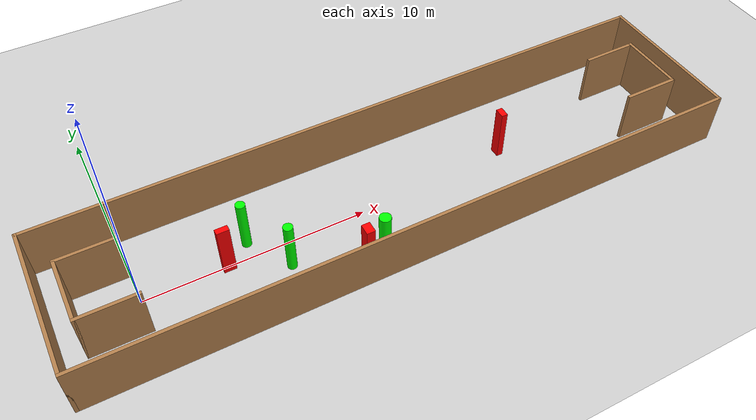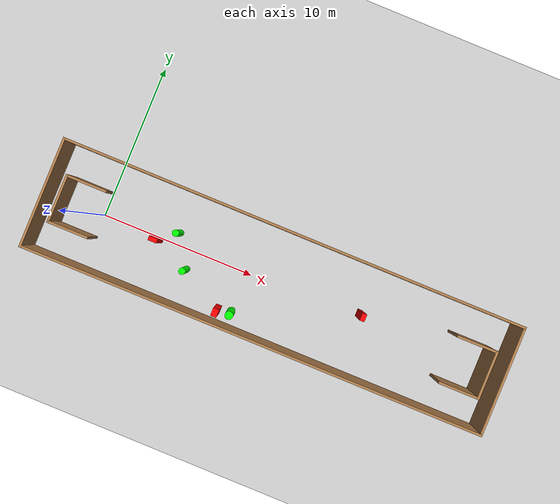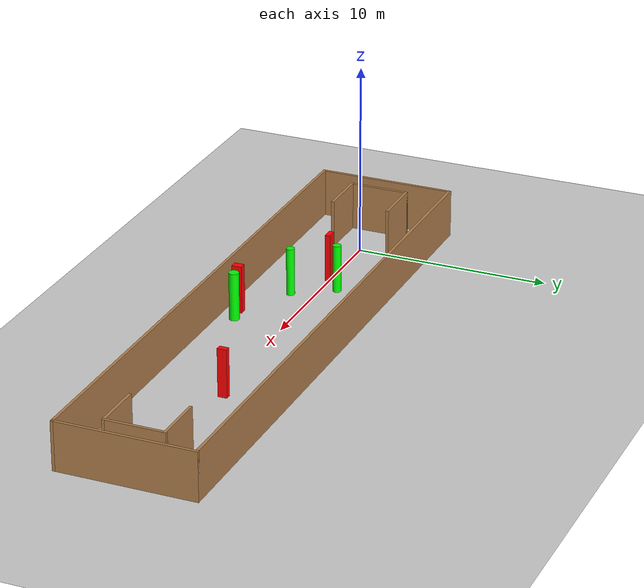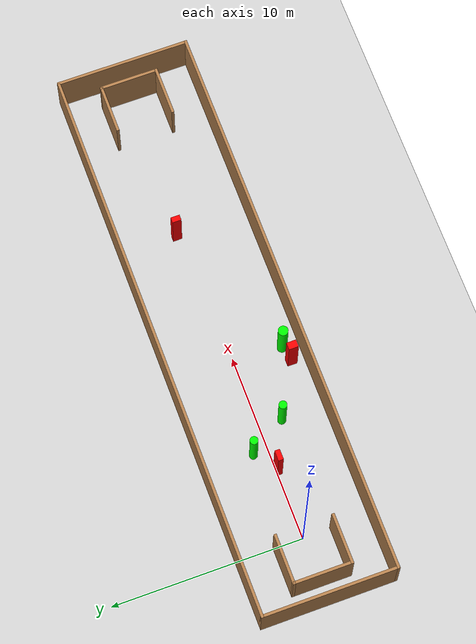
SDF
<sdf version="1.7">
 <world name="default">
  <light name="sun" type="directional">
   <pose>0 0 10 0 -0 0</pose>
   <diffuse>0.8 0.8 0.8 1</diffuse>
   <specular>0.2 0.2 0.2 1</specular>
   <attenuation>
    <range>1000</range>
    <constant>0.9</constant>
    <linear>0.01</linear>
    <quadratic>0.001</quadratic>
   </attenuation>
   <direction>-0.5 0.1 -0.9</direction>
   <spot><inner_angle>0</inner_angle><outer_angle>0</outer_angle><falloff>0</falloff></spot>
  </light>
  <model name="ground_plane">
   <static>1</static>
   <link name="link">
    <collision name="collision">
     <geometry><plane><normal>0 0 1</normal><size>100 100</size></plane></geometry>
     <surface>
      <contact><collide_bitmask>65535</collide_bitmask></contact>
      <friction><ode><mu>100</mu><mu2>50</mu2></ode></friction>
     </surface>
    </collision>
    <visual name="visual">
     <cast_shadows>0</cast_shadows>
     <geometry><plane><normal>0 0 1</normal><size>100 100</size></plane></geometry>
     <material>
      <script><uri>file://media/materials/scripts/gazebo.material</uri><name>Gazebo/Grey</name></script>
     </material>
    </visual>
   </link>
  </model>
  <gravity>0 0 -9.8</gravity>
  <magnetic_field>6e-06 2.3e-05 -4.2e-05</magnetic_field>
  <atmosphere type="adiabatic"/>
  <physics type="ode">
   <max_step_size>0.001</max_step_size>
   <real_time_factor>1</real_time_factor>
   <real_time_update_rate>1000</real_time_update_rate>
  </physics>
  <scene><ambient>0.4 0.4 0.4 1</ambient><background>0.7 0.7 0.7 1</background><shadows>1</shadows></scene>
  <spherical_coordinates>
   <surface_model>EARTH_WGS84</surface_model>
   <latitude_deg>0</latitude_deg>
   <longitude_deg>0</longitude_deg>
   <elevation>0</elevation>
   <heading_deg>0</heading_deg>
  </spherical_coordinates>
  <model name="my_base_walls">
   <link name="Wall_0">
    <collision name="Wall_0_Collision">
     <geometry><box><size>7.15 0.15 2.5</size></box></geometry>
     <pose>0 0 1.25 0 -0 0</pose>
    </collision>
    <visual name="Wall_0_Visual">
     <pose>0 0 1.25 0 -0 0</pose>
     <geometry><box><size>7.15 0.15 2.5</size></box></geometry>
     <material>
      <script><uri>file://media/materials/scripts/gazebo.material</uri><name>Gazebo/Wood</name></script>
      <ambient>1 1 1 1</ambient>
     </material>
     <meta><layer>0</layer></meta>
    </visual>
    <pose>-15 0 0 0 -0 1.5708</pose>
   </link>
   <link name="Wall_10">
    <collision name="Wall_10_Collision">
     <geometry><box><size>2.65 0.15 2.5</size></box></geometry>
     <pose>0 0 1.25 0 -0 0</pose>
    </collision>
    <visual name="Wall_10_Visual">
     <pose>0 0 1.25 0 -0 0</pose>
     <geometry><box><size>2.65 0.15 2.5</size></box></geometry>
     <material>
      <script><uri>file://media/materials/scripts/gazebo.material</uri><name>Gazebo/Wood</name></script>
      <ambient>1 1 1 1</ambient>
     </material>
     <meta><layer>0</layer></meta>
    </visual>
    <pose>-12.75 -1.5 0 0 -0 0</pose>
   </link>
   <link name="Wall_12">
    <collision name="Wall_12_Collision">
     <geometry><box><size>2.65 0.15 2.5</size></box></geometry>
     <pose>0 0 1.25 0 -0 0</pose>
    </collision>
    <visual name="Wall_12_Visual">
     <pose>0 0 1.25 0 -0 0</pose>
     <geometry><box><size>2.65 0.15 2.5</size></box></geometry>
     <material>
      <script><uri>file://media/materials/scripts/gazebo.material</uri><name>Gazebo/Wood</name></script>
      <ambient>1 1 1 1</ambient>
     </material>
     <meta><layer>0</layer></meta>
    </visual>
    <pose>-12.75 1.5 0 0 -0 0</pose>
   </link>
   <link name="Wall_14">
    <collision name="Wall_14_Collision">
     <geometry><box><size>3.15 0.15 2.5</size></box></geometry>
     <pose>0 0 1.25 0 -0 0</pose>
    </collision>
    <visual name="Wall_14_Visual">
     <pose>0 0 1.25 0 -0 0</pose>
     <geometry><box><size>3.15 0.15 2.5</size></box></geometry>
     <material>
      <script><uri>file://media/materials/scripts/gazebo.material</uri><name>Gazebo/Wood</name></script>
      <ambient>1 1 1 1</ambient>
     </material>
     <meta><layer>0</layer></meta>
    </visual>
    <pose>14 0 0 0 -0 -1.5708</pose>
   </link>
   <link name="Wall_15">
    <collision name="Wall_15_Collision">
     <geometry><box><size>2.65 0.15 2.5</size></box></geometry>
     <pose>0 0 1.25 0 -0 0</pose>
    </collision>
    <visual name="Wall_15_Visual">
     <pose>0 0 1.25 0 -0 0</pose>
     <geometry><box><size>2.65 0.15 2.5</size></box></geometry>
     <material>
      <script><uri>file://media/materials/scripts/gazebo.material</uri><name>Gazebo/Wood</name></script>
      <ambient>1 1 1 1</ambient>
     </material>
     <meta><layer>0</layer></meta>
    </visual>
    <pose>12.75 -1.5 0 0 -0 3.14159</pose>
   </link>
   <link name="Wall_17">
    <collision name="Wall_17_Collision">
     <geometry><box><size>2.65 0.15 2.5</size></box></geometry>
     <pose>0 0 1.25 0 -0 0</pose>
    </collision>
    <visual name="Wall_17_Visual">
     <pose>0 0 1.25 0 -0 0</pose>
     <geometry><box><size>2.65 0.15 2.5</size></box></geometry>
     <material>
      <script><uri>file://media/materials/scripts/gazebo.material</uri><name>Gazebo/Wood</name></script>
      <ambient>1 1 1 1</ambient>
     </material>
     <meta><layer>0</layer></meta>
    </visual>
    <pose>12.75 1.5 0 0 -0 3.14159</pose>
   </link>
   <link name="Wall_2">
    <collision name="Wall_2_Collision">
     <geometry><box><size>30.15 0.15 2.5</size></box></geometry>
     <pose>0 0 1.25 0 -0 0</pose>
    </collision>
    <visual name="Wall_2_Visual">
     <pose>0 0 1.25 0 -0 0</pose>
     <geometry><box><size>30.15 0.15 2.5</size></box></geometry>
     <material>
      <script><uri>file://media/materials/scripts/gazebo.material</uri><name>Gazebo/Wood</name></script>
      <ambient>1 1 1 1</ambient>
     </material>
     <meta><layer>0</layer></meta>
    </visual>
    <pose>-0 -3.5 0 0 -0 0</pose>
   </link>
   <link name="Wall_4">
    <collision name="Wall_4_Collision">
     <geometry><box><size>30.15 0.15 2.5</size></box></geometry>
     <pose>0 0 1.25 0 -0 0</pose>
    </collision>
    <visual name="Wall_4_Visual">
     <pose>0 0 1.25 0 -0 0</pose>
     <geometry><box><size>30.15 0.15 2.5</size></box></geometry>
     <material>
      <script><uri>file://media/materials/scripts/gazebo.material</uri><name>Gazebo/Wood</name></script>
      <ambient>1 1 1 1</ambient>
     </material>
     <meta><layer>0</layer></meta>
    </visual>
    <pose>-0 3.5 0 0 -0 0</pose>
   </link>
   <link name="Wall_6">
    <collision name="Wall_6_Collision">
     <geometry><box><size>7.15 0.15 2.5</size></box></geometry>
     <pose>0 0 1.25 0 -0 0</pose>
    </collision>
    <visual name="Wall_6_Visual">
     <pose>0 0 1.25 0 -0 0</pose>
     <geometry><box><size>7.15 0.15 2.5</size></box></geometry>
     <material>
      <script><uri>file://media/materials/scripts/gazebo.material</uri><name>Gazebo/Wood</name></script>
      <ambient>1 1 1 1</ambient>
     </material>
     <meta><layer>0</layer></meta>
    </visual>
    <pose>15 0 0 0 -0 -1.5708</pose>
   </link>
   <link name="Wall_9">
    <collision name="Wall_9_Collision">
     <geometry><box><size>3.15 0.15 2.5</size></box></geometry>
     <pose>0 0 1.25 0 -0 0</pose>
    </collision>
    <visual name="Wall_9_Visual">
     <pose>0 0 1.25 0 -0 0</pose>
     <geometry><box><size>3.15 0.15 2.5</size></box></geometry>
     <material>
      <script><uri>file://media/materials/scripts/gazebo.material</uri><name>Gazebo/Wood</name></script>
      <ambient>1 1 1 1</ambient>
     </material>
     <meta><layer>0</layer></meta>
    </visual>
    <pose>-14 0 0 0 -0 -1.5708</pose>
   </link>
   <static>1</static>
   <pose>11.5 0 0 0 -0 0</pose>
  </model>
  <model name="cylinder1">
   <static>1</static>
   <link name="link">
    <inertial>
     <mass>1</mass>
     <inertia><ixx>0.5</ixx><ixy>0</ixy><ixz>0</ixz><iyy>0.5</iyy><iyz>0</iyz><izz>1</izz></inertia>
    </inertial>
    <collision name="collision">
     <geometry><cylinder><radius>0.26079593882787167</radius><length>2.5</length></cylinder></geometry>
    </collision>
    <visual name="visual">
     <geometry><cylinder><radius>0.26079593882787167</radius><length>2.5</length></cylinder></geometry>
     <material>
      <ambient>0 1 0 1</ambient>
      <diffuse>0 1 0 1</diffuse>
      <specular>0.1 0.1 0.1 1</specular>
      <emissive>0 0 0 0</emissive>
     </material>
    </visual>
   </link>
   <pose>9.720804793393334 -2.579786981150205 1.25 0 0 0</pose>
  </model>
  <model name="cylinder2">
   <static>1</static>
   <link name="link">
    <inertial>
     <mass>1</mass>
     <inertia><ixx>0.5</ixx><ixy>0</ixy><ixz>0</ixz><iyy>0.5</iyy><iyz>0</iyz><izz>1</izz></inertia>
    </inertial>
    <collision name="collision">
     <geometry><cylinder><radius>0.21358619530947354</radius><length>2.5</length></cylinder></geometry>
    </collision>
    <visual name="visual">
     <geometry><cylinder><radius>0.21358619530947354</radius><length>2.5</length></cylinder></geometry>
     <material>
      <ambient>0 1 0 1</ambient>
      <diffuse>0 1 0 1</diffuse>
      <specular>0.1 0.1 0.1 1</specular>
      <emissive>0 0 0 0</emissive>
     </material>
    </visual>
   </link>
   <pose>6.09240619614598 -1.1939940814414758 1.25 0 0 0</pose>
  </model>
  <model name="cylinder3">
   <static>1</static>
   <link name="link">
    <inertial>
     <mass>1</mass>
     <inertia><ixx>0.5</ixx><ixy>0</ixy><ixz>0</ixz><iyy>0.5</iyy><iyz>0</iyz><izz>1</izz></inertia>
    </inertial>
    <collision name="collision">
     <geometry><cylinder><radius>0.21327370903130174</radius><length>2.5</length></cylinder></geometry>
    </collision>
    <visual name="visual">
     <geometry><cylinder><radius>0.21327370903130174</radius><length>2.5</length></cylinder></geometry>
     <material>
      <ambient>0 1 0 1</ambient>
      <diffuse>0 1 0 1</diffuse>
      <specular>0.1 0.1 0.1 1</specular>
      <emissive>0 0 0 0</emissive>
     </material>
    </visual>
   </link>
   <pose>4.862665099342397 0.7858310484850985 1.25 0 0 0</pose>
  </model>
  <model name="box1">
   <static>1</static>
   <link name="link">
    <inertial>
     <mass>1</mass>
     <inertia><ixx>0.083</ixx><ixy>0</ixy><ixz>0</ixz><iyy>0.083</iyy><iyz>0</iyz><izz>0.083</izz></inertia>
    </inertial>
    <collision name="collision">
     <geometry><box><size>0.5519396616055926 0.27045546611759946 2.5</size></box></geometry>
    </collision>
    <visual name="visual">
     <geometry><box><size>0.5519396616055926 0.27045546611759946 2.5</size></box></geometry>
     <material>
      <ambient>1 0 0 1</ambient>
      <diffuse>1 0 0 1</diffuse>
      <specular>0.1 0.1 0.1 1</specular>
      <emissive>0 0 0 0</emissive>
     </material>
    </visual>
    <sensor name="my_contact" type="contact">
     <contact><collision>box_collision</collision><topic>__default_topic__</topic></contact>
    </sensor>
   </link>
   <pose>3.7420651781562757 -0.10015461878045295 1.25 0 0 0</pose>
  </model>
  <model name="box2">
   <static>1</static>
   <link name="link">
    <inertial>
     <mass>1</mass>
     <inertia><ixx>0.083</ixx><ixy>0</ixy><ixz>0</ixz><iyy>0.083</iyy><iyz>0</iyz><izz>0.083</izz></inertia>
    </inertial>
    <collision name="collision">
     <geometry><box><size>0.3806190981877355 0.5137248864054702 2.5</size></box></geometry>
    </collision>
    <visual name="visual">
     <geometry><box><size>0.3806190981877355 0.5137248864054702 2.5</size></box></geometry>
     <material>
      <ambient>1 0 0 1</ambient>
      <diffuse>1 0 0 1</diffuse>
      <specular>0.1 0.1 0.1 1</specular>
      <emissive>0 0 0 0</emissive>
     </material>
    </visual>
    <sensor name="my_contact" type="contact">
     <contact><collision>box_collision</collision><topic>__default_topic__</topic></contact>
    </sensor>
   </link>
   <pose>8.86741630207298 -2.754355038697263 1.25 0 0 0</pose>
  </model>
  <model name="box3">
   <static>1</static>
   <link name="link">
    <inertial>
     <mass>1</mass>
     <inertia><ixx>0.083</ixx><ixy>0</ixy><ixz>0</ixz><iyy>0.083</iyy><iyz>0</iyz><izz>0.083</izz></inertia>
    </inertial>
    <collision name="collision">
     <geometry><box><size>0.29245563698178045 0.47777348819486043 2.5</size></box></geometry>
    </collision>
    <visual name="visual">
     <geometry><box><size>0.29245563698178045 0.47777348819486043 2.5</size></box></geometry>
     <material>
      <ambient>1 0 0 1</ambient>
      <diffuse>1 0 0 1</diffuse>
      <specular>0.1 0.1 0.1 1</specular>
      <emissive>0 0 0 0</emissive>
     </material>
    </visual>
    <sensor name="my_contact" type="contact">
     <contact><collision>box_collision</collision><topic>__default_topic__</topic></contact>
    </sensor>
   </link>
   <pose>17.25418942942681 0.38198018391231336 1.25 0 0 0</pose>
  </model>
 </world>
</sdf>
